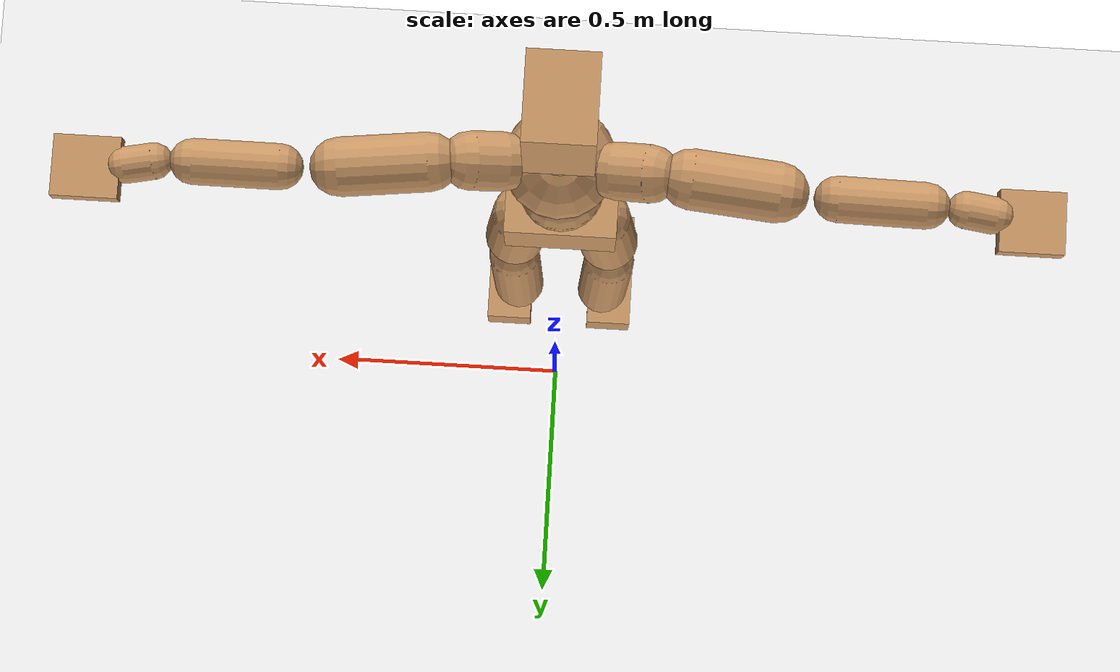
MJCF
<mujoco model="humanoid">
  <option integrator="implicitfast" />

  <visual>
    <global offwidth="1280" offheight="960" />
    <headlight active="1" ambient="0.34 0.34 0.34" diffuse="0.5 0.5 0.5" />
  </visual>

  <default>
    <joint damping="2" stiffness="2" armature="0.01" limited="true" solimplimit="0 .99 .01" />
    <geom condim="1" friction="0.7 0.005 0.0001" solimp=".99 .99 .003" solref="0.015 1" margin="0.001" rgba="0.8 0.6 .4 1" />
    <default class="smplcontact">
      <geom condim="3" friction="1. 0.005 0.0001" solref="0.015 1" solimp="0.98 0.98 0.001" priority="1" />
    </default>
    <default class="stiff_medium">
      <joint stiffness="10" />
    </default>
    <default class="stiff_medium_higher">
      <joint stiffness="50" />
    </default>
    <default class="stiff_high">
      <joint stiffness="100" />
    </default>
  </default>

  <asset>
    <texture type="skybox" builtin="gradient" rgb1="0.99 0.99 0.99" rgb2="0.608 0.828 0.892" width="100" />
    <texture builtin="flat" height="1278" mark="cross" markrgb="1 1 1" name="texgeom" random="0.01" rgb1="0.8 0.6 0.4" rgb2="0.8 0.6 0.4" type="cube" width="127" />
    <texture name="texplane" type="2d" builtin="checker" markrgb="1 1 1" rgb1="0.756 0.772 0.76" rgb2="0.6 0.6 0.6" width="100" height="100" />
    <material name="MatPlane" reflectance="0.5" texture="texplane" texrepeat="1 1" texuniform="true" />
    <material name="geom" texture="texgeom" texuniform="true" />
  </asset>

  <worldbody>
    <light name="tracking_light" pos="0 0 7" dir="0 0 -1" directional="true" cutoff="100" exponent="1" diffuse="1 1 1" specular="0.1 0.1 0.1" mode="trackcom" />
    <camera name="back" pos="0 3 2.4" xyaxes="-1 0 0 0 -1 2" mode="trackcom" />
    <camera name="side" pos="-3 0 2.4" xyaxes="0 -1 0 1 0 2" mode="trackcom" />
    <camera name="front_side" pos="-2.8 -2.8 0.8" xyaxes="0.5 -0.5 0 0.1 0.1 1" mode="trackcom" />
    <geom condim="3" name="floor" pos="0 0 0" rgba="1 1 1 1" size="100 100 .2" type="plane" material="MatPlane" />
    <body name="Pelvis" pos="-0.0018 -0.2233 0.9367" euler="90 0 0">
      <site name="Pelvis" size="0.01" />
      <freejoint name="Pelvis" />
      <geom type="box" pos="-0.0000 -0.0121 -0.0055" size="0.1069 0.0722 0.083" quat="1.0000 0.0000 0.0000 0.0000" density="3165.830099" name="Pelvis" />
      <body name="L_Hip" pos="0.0695 -0.0914 -0.0068">
        <joint name="L_Hip_x" type="hinge" pos="0 0 0" axis="1 0 0" stiffness="10.0" range="-160.0 22.92" class="stiff_medium" damping="14.999999999999998" armature="0.009999999999999998"/>
        <joint name="L_Hip_y" type="hinge" pos="0 0 0" axis="0 1 0" stiffness="10.0" range="-70.0 70.0" class="stiff_medium" damping="10.000000000000002" armature="0.010000000000000005"/>
        <joint name="L_Hip_z" type="hinge" pos="0 0 0" axis="0 0 1" stiffness="10.0" range="-28.65 90.0" class="stiff_medium" damping="9.999999999999998" armature="0.009999999999999997"/>
        <geom type="capsule" density="2040.816327" fromto="0.0069 -0.075 -0.0009 0.0274 -0.3002 -0.0036" size="0.0615" name="L_Hip" />
        <body name="L_Knee" pos="0.0343 -0.3752 -0.0045">
          <joint name="L_Knee_x" type="hinge" pos="0 0 0" axis="1 0 0" range="-5.16 171.89" damping="8.000000000000002" armature="0.010000000000000005" stiffness="2.0"/>
          <joint name="L_Knee_y" type="hinge" pos="0 0 0" axis="0 1 0" range="-4.58 6.88" damping="8.0" armature="0.010000000000000002" stiffness="2.0"/>
          <joint name="L_Knee_z" type="hinge" pos="0 0 0" axis="0 0 1" range="-6.88 4.58" damping="8.0" armature="0.01" stiffness="2.0"/>
          <geom type="capsule" density="1234.567901" fromto="-0.0027 -0.0796 -0.0087 -0.0109 -0.3184 -0.035" size="0.0541" name="L_Knee" />
          <body name="L_Ankle" pos="-0.0136 -0.398 -0.0437">
            <joint name="L_Ankle_x" type="hinge" pos="0 0 0" axis="1 0 0" range="-45.84 45.84" class="stiff_medium" damping="5.999999999999993" armature="0.009999999999999978" stiffness="10.0"/>
            <joint name="L_Ankle_y" type="hinge" pos="0 0 0" axis="0 1 0" range="-74.48 22.92" class="stiff_medium" damping="3.0" armature="0.010000000000000002" stiffness="10.0"/>
            <joint name="L_Ankle_z" type="hinge" pos="0 0 0" axis="0 0 1" range="-4.58 4.58" class="stiff_medium" damping="5.9999999999999485" armature="0.009999999999999827" stiffness="10.0"/>
            <geom type="box" pos="0.0233 -0.0239 0.0242" size="0.0483 0.0464 0.085" quat="1.0000 0.0000 0.0000 0.0000" density="449.071558" name="L_Ankle" class="smplcontact" />
            <body name="L_Toe" pos="0.0264 -0.0558 0.1193">
              <joint name="L_Toe_x" type="hinge" pos="0 0 0" axis="1 0 0" range="-91.67 22.92" armature="0.009999999999998207" damping="1.9999999999998206" stiffness="2.0"/>
              <joint name="L_Toe_y" type="hinge" pos="0 0 0" axis="0 1 0" range="-4.58 4.58" armature="0.009999999999999976" damping="1.9999999999999976" stiffness="2.0"/>
              <joint name="L_Toe_z" type="hinge" pos="0 0 0" axis="0 0 1" range="-4.58 4.58" armature="0.009999999999997608" damping="1.9999999999997606" stiffness="2.0"/>
              <geom type="box" pos="-0.003 0.0055 0.0248" size="0.0478 0.02 0.0496" quat="1.0000 0.0000 0.0000 0.0000" density="423.206892" name="L_Toe" class="smplcontact" />
            </body>
          </body>
        </body>
      </body>
      <body name="R_Hip" pos="-0.0677 -0.0905 -0.0043">
        <joint name="R_Hip_x" type="hinge" pos="0 0 0" axis="1 0 0" stiffness="10.0" range="-160.0 22.92" class="stiff_medium" damping="14.999999999999998" armature="0.009999999999999998"/>
        <joint name="R_Hip_y" type="hinge" pos="0 0 0" axis="0 1 0" stiffness="10.0" range="-70.0 70.0" class="stiff_medium" damping="10.000000000000002" armature="0.010000000000000005"/>
        <joint name="R_Hip_z" type="hinge" pos="0 0 0" axis="0 0 1" stiffness="10.0" range="-90.0 28.65" class="stiff_medium" damping="9.999999999999998" armature="0.009999999999999997"/>
        <geom type="capsule" density="2040.816327" fromto="-0.0077 -0.0765 -0.0018 -0.0306 -0.3061 -0.0071" size="0.0606" name="R_Hip" />
        <body name="R_Knee" pos="-0.0383 -0.3826 -0.0089">
          <joint name="R_Knee_x" type="hinge" pos="0 0 0" axis="1 0 0" range="-5.16 171.89" damping="8.000000000000002" armature="0.010000000000000005" stiffness="2.0"/>
          <joint name="R_Knee_y" type="hinge" pos="0 0 0" axis="0 1 0" range="-6.88 4.58" damping="8.0" armature="0.010000000000000002" stiffness="2.0"/>
          <joint name="R_Knee_z" type="hinge" pos="0 0 0" axis="0 0 1" range="-4.58 6.88" damping="8.0" armature="0.01" stiffness="2.0"/>
          <geom type="capsule" density="1234.567901" fromto="0.0032 -0.0797 -0.0085 0.0126 -0.3187 -0.0338" size="0.0541" name="R_Knee" />
          <body name="R_Ankle" pos="0.0158 -0.3984 -0.0423">
            <joint name="R_Ankle_x" type="hinge" pos="0 0 0" axis="1 0 0" range="-45.84 45.84" class="stiff_medium" damping="5.999999999999993" armature="0.009999999999999978" stiffness="10.0"/>
            <joint name="R_Ankle_y" type="hinge" pos="0 0 0" axis="0 1 0" range="-22.92 74.48" class="stiff_medium" damping="3.0" armature="0.010000000000000002" stiffness="10.0"/>
            <joint name="R_Ankle_z" type="hinge" pos="0 0 0" axis="0 0 1" range="-4.58 4.58" class="stiff_medium" damping="5.9999999999999485" armature="0.009999999999999827" stiffness="10.0"/>
            <geom type="box" pos="-0.0212 -0.0174 0.0256" size="0.0483 0.0478 0.0865" quat="1.0000 0.0000 0.0000 0.0000" density="434.700981" name="R_Ankle" class="smplcontact" />
            <body name="R_Toe" pos="-0.0254 -0.0481 0.1233">
              <joint name="R_Toe_x" type="hinge" pos="0 0 0" axis="1 0 0" range="-91.67 22.92" armature="0.009999999999998207" damping="1.9999999999998206" stiffness="2.0"/>
              <joint name="R_Toe_y" type="hinge" pos="0 0 0" axis="0 1 0" range="-4.58 4.58" armature="0.009999999999999976" damping="1.9999999999999976" stiffness="2.0"/>
              <joint name="R_Toe_z" type="hinge" pos="0 0 0" axis="0 0 1" range="-4.58 4.58" armature="0.009999999999997608" damping="1.9999999999997606" stiffness="2.0"/>
              <geom type="box" pos="0.0042 0.0045 0.0227" size="0.0479 0.0216 0.0493" quat="1.0000 0.0000 0.0000 0.0000" density="407.384095" name="R_Toe" class="smplcontact" />
            </body>
          </body>
        </body>
      </body>
      <body name="Torso" pos="-0.002625 0.11445 -0.028035">
        <joint name="Torso_x" type="hinge" pos="0 0 0" axis="1 0 0" range="-25.78 57.3" class="stiff_medium" damping="15.885938601224538" armature="0.010764241477955468" stiffness="10.419810227272727"/>
        <joint name="Torso_y" type="hinge" pos="0 0 0" axis="0 1 0" range="-57.3 57.3" class="stiff_high" damping="20.4325796433228" armature="0.009997983636253009" stiffness="104.39362727272726"/>
        <joint name="Torso_z" type="hinge" pos="0 0 0" axis="0 0 1" range="-34.38 34.38" class="stiff_high" damping="21.03040158854331" armature="0.010519861380583242" stiffness="105.10542272727272"/>
        <geom type="capsule" density="2040.816327" fromto="0.002625 0.06384 0.000525 0.00315 0.078015 0.00063" size="0.0769" name="Torso" />
        <body name="Spine" pos="0.005775 0.14196 0.001155">
          <joint name="Spine_x" type="hinge" pos="0 0 0" axis="1 0 0" stiffness="10.374046363636362" range="-25.78 57.3" class="stiff_medium" damping="15.715307024794036" armature="0.010580715511965223"/>
          <joint name="Spine_y" type="hinge" pos="0 0 0" axis="0 1 0" stiffness="10.391872954545459" range="-57.3 57.3" class="stiff_high" damping="8.15401322310553" armature="0.009996984532618838"/>
          <joint name="Spine_z" type="hinge" pos="0 0 0" axis="0 0 1" stiffness="20.68049227272727" range="-34.38 34.38" class="stiff_high" damping="12.370730729671028" armature="0.01027773318179479"/>
          <geom type="capsule" density="2040.816327" fromto="0.000735 0.02499 0.01197 0.00084 0.030555 0.0147" size="0.0755" name="Spine" />
          <body name="Chest" pos="0.001575 0.055545 0.02667">
            <joint name="Chest_x" type="hinge" pos="0 0 0" axis="1 0 0" stiffness="10.275206590909091" range="-25.78 57.3" class="stiff_medium" damping="15.560968466750916" armature="0.0104737008332033"/>
            <joint name="Chest_y" type="hinge" pos="0 0 0" axis="0 1 0" stiffness="10.156445000000001" range="-57.3 57.3" class="stiff_high" damping="8.064180692467838" armature="0.010004578718361077"/>
            <joint name="Chest_z" type="hinge" pos="0 0 0" axis="0 0 1" stiffness="20.58668590909091" range="-34.38 34.38" class="stiff_high" damping="12.283761840718956" armature="0.010179907701958464"/>
            <geom type="capsule" density="2040.816327" fromto="-0.000945 0.07161 -0.018165 -0.00105 0.087465 -0.02226" size="0.1002" name="Chest" />
            <body name="Neck" pos="-0.00294 0.224595 -0.045045">
              <joint name="Neck_x" type="hinge" pos="0 0 0" axis="1 0 0" range="-28.65 57.3" class="stiff_medium_higher" damping="10.035816971790549" armature="0.010014160550049483" stiffness="50.287601136363634"/>
              <joint name="Neck_y" type="hinge" pos="0 0 0" axis="0 1 0" range="-40.11 40.11" class="stiff_medium_higher" damping="10.04193677304627" armature="0.010038952160699995" stiffness="50.22461136363636"/>
              <joint name="Neck_z" type="hinge" pos="0 0 0" axis="0 0 1" range="-40.11 40.11" class="stiff_medium_higher" damping="10.016052769153523" armature="0.010009914075657827" stiffness="50.110976136363625"/>
              <geom type="capsule" density="1000" fromto="0.00105 0.01365 0.010815 0.004305 0.0546 0.043155" size="0.0436" name="Neck" />
              <body name="Head" pos="0.0052 0.065 0.0513">
                <joint name="Head_x" type="hinge" pos="0 0 0" axis="1 0 0" range="-28.65 57.3" class="stiff_medium_higher" damping="2.0000000000000093" armature="0.010000000000000096" stiffness="50.0"/>
                <joint name="Head_y" type="hinge" pos="0 0 0" axis="0 1 0" range="-40.11 40.11" class="stiff_medium_higher" damping="2.0" armature="0.01" stiffness="50.0"/>
                <joint name="Head_z" type="hinge" pos="0 0 0" axis="0 0 1" range="-40.11 40.11" class="stiff_medium_higher" damping="2.0000000000000067" armature="0.01000000000000007" stiffness="50.0"/>
                <geom type="box" pos="-0.0042 0.0876 -0.0116" size="0.0606 0.1154 0.076" quat="1.0000 0.0000 0.0000 0.0000" density="1018.069894" name="Head" />
                <geom type="capsule" name="nose" size="0.02 0.01" pos="0 0.07 0.05" quat="1 0 0 0" mass="0" contype="0" conaffinity="0" />
              </body>
            </body>
            <body name="L_Thorax" pos="0.0788 0.1217 -0.0341">
              <joint name="L_Thorax_x" type="hinge" pos="0 0 0" axis="1 0 0" range="-10.89 4.58" class="stiff_medium_higher" damping="19.9999999999999" armature="0.009999999999999903" stiffness="50.0"/>
              <joint name="L_Thorax_y" type="hinge" pos="0 0 0" axis="0 1 0" range="-28.65 17.19" class="stiff_medium_higher" damping="20.000000000000004" armature="0.010000000000000005" stiffness="50.0"/>
              <joint name="L_Thorax_z" type="hinge" pos="0 0 0" axis="0 0 1" range="-31.51 40.11" class="stiff_medium_higher" damping="19.999999999999996" armature="0.009999999999999995" stiffness="50.0"/>
              <geom type="capsule" density="1000" fromto="0.0182 0.0061 -0.0018 0.0728 0.0244 -0.0071" size="0.0521" name="L_Thorax" />
              <body name="L_Shoulder" pos="0.091 0.0305 -0.0089">
                <joint name="L_Shoulder_x" type="hinge" pos="0 0 0" axis="1 0 0" range="-97.4 97.4" class="stiff_medium" damping="5.999999999999977" armature="0.009999999999999926" stiffness="10.0"/>
                <joint name="L_Shoulder_y" type="hinge" pos="0 0 0" axis="0 1 0" range="-108.86 80.21" class="stiff_medium" damping="6.000000000000002" armature="0.010000000000000005" stiffness="10.0"/>
                <joint name="L_Shoulder_z" type="hinge" pos="0 0 0" axis="0 0 1" range="-97.4 85.94" class="stiff_medium" damping="6.0" armature="0.01" stiffness="10.0"/>
                <geom type="capsule" density="1000" fromto="0.0519 -0.0026 -0.0055 0.2077 -0.0102 -0.022" size="0.0517" name="L_Shoulder" />
                <body name="L_Elbow" pos="0.2596 -0.0128 -0.0275">
                  <joint name="L_Elbow_x" type="hinge" pos="0 0 0" axis="1 0 0" range="-17.19 4.58" damping="4.999999999999873" armature="0.009999999999999492" stiffness="2.0"/>
                  <joint name="L_Elbow_y" type="hinge" pos="0 0 0" axis="0 1 0" range="-180.0 17.19" damping="5.000000000000005" armature="0.010000000000000023" stiffness="2.0"/>
                  <joint name="L_Elbow_z" type="hinge" pos="0 0 0" axis="0 0 1" range="-100.84 4.58" damping="4.999999999999999" armature="0.009999999999999998" stiffness="2.0"/>
                  <geom type="capsule" density="1000" fromto="0.0498 0.0018 -0.0002 0.1994 0.0072 -0.0009" size="0.0405" name="L_Elbow" />
                  <body name="L_Wrist" pos="0.2492 0.009 -0.0012">
                    <joint name="L_Wrist_x" type="hinge" pos="0 0 0" axis="1 0 0" range="-180.0 22.92" armature="0.009999999999999598" damping="1.9999999999999596" stiffness="2.0"/>
                    <joint name="L_Wrist_y" type="hinge" pos="0 0 0" axis="0 1 0" range="-17.19 17.19" armature="0.010000000000000066" damping="2.0000000000000067" stiffness="2.0"/>
                    <joint name="L_Wrist_z" type="hinge" pos="0 0 0" axis="0 0 1" range="-22.92 22.92" armature="0.010000000000000077" damping="2.0000000000000075" stiffness="2.0"/>
                    <geom type="capsule" density="1000" fromto="0.0168 -0.0016 -0.003 0.0672 -0.0065 -0.012" size="0.0318" name="L_Wrist" class="smplcontact" />
                    <body name="L_Hand" pos="0.084 -0.0082 -0.0149">
                      <joint name="L_Hand_x" type="hinge" pos="0 0 0" axis="1 0 0" range="-17.19 17.19" armature="0.009999999999999773" damping="1.9999999999999774" stiffness="2.0"/>
                      <joint name="L_Hand_y" type="hinge" pos="0 0 0" axis="0 1 0" range="-51.57 51.57" armature="0.010000000000000201" damping="2.00000000000002" stiffness="2.0"/>
                      <joint name="L_Hand_z" type="hinge" pos="0 0 0" axis="0 0 1" range="-91.67 91.67" armature="0.010000000000000247" damping="2.0000000000000244" stiffness="2.0"/>
                      <geom type="box" pos="0.0493 0.001 -0.0058" size="0.0585 0.0158 0.0538" quat="1.0000 0.0000 0.0000 0.0000" density="400.552564" name="L_Hand" class="smplcontact" />
                    </body>
                  </body>
                </body>
              </body>
            </body>
            <body name="R_Thorax" pos="-0.0818 0.1188 -0.0386">
              <joint name="R_Thorax_x" type="hinge" pos="0 0 0" axis="1 0 0" range="-10.89 4.58" class="stiff_medium_higher" damping="19.9999999999999" armature="0.009999999999999903" stiffness="50.0"/>
              <joint name="R_Thorax_y" type="hinge" pos="0 0 0" axis="0 1 0" range="-17.19 28.65" class="stiff_medium_higher" damping="20.000000000000004" armature="0.010000000000000005" stiffness="50.0"/>
              <joint name="R_Thorax_z" type="hinge" pos="0 0 0" axis="0 0 1" range="-40.11 31.51" class="stiff_medium_higher" damping="19.999999999999996" armature="0.009999999999999995" stiffness="50.0"/>
              <geom type="capsule" density="1000" fromto="-0.0192 0.0065 -0.0018 -0.0768 0.026 -0.0073" size="0.0511" name="R_Thorax" />
              <body name="R_Shoulder" pos="-0.096 0.0326 -0.0091">
                <joint name="R_Shoulder_x" type="hinge" pos="0 0 0" axis="1 0 0" range="-97.4 97.4" class="stiff_medium" damping="5.999999999999977" armature="0.009999999999999926" stiffness="10.0"/>
                <joint name="R_Shoulder_y" type="hinge" pos="0 0 0" axis="0 1 0" range="-80.21 108.86" class="stiff_medium" damping="6.000000000000002" armature="0.010000000000000005" stiffness="10.0"/>
                <joint name="R_Shoulder_z" type="hinge" pos="0 0 0" axis="0 0 1" range="-85.94 97.4" class="stiff_medium" damping="6.0" armature="0.01" stiffness="10.0"/>
                <geom type="capsule" density="1000" fromto="-0.0507 -0.0027 -0.0043 -0.203 -0.0107 -0.0171" size="0.0531" name="R_Shoulder" />
                <body name="R_Elbow" pos="-0.2537 -0.0133 -0.0214">
                  <joint name="R_Elbow_x" type="hinge" pos="0 0 0" axis="1 0 0" range="-17.19 4.58" damping="4.999999999999873" armature="0.009999999999999492" stiffness="2.0"/>
                  <joint name="R_Elbow_y" type="hinge" pos="0 0 0" axis="0 1 0" range="-17.19 180.0" damping="5.000000000000005" armature="0.010000000000000023" stiffness="2.0"/>
                  <joint name="R_Elbow_z" type="hinge" pos="0 0 0" axis="0 0 1" range="-4.58 100.84" damping="4.999999999999999" armature="0.009999999999999998" stiffness="2.0"/>
                  <geom type="capsule" density="1000" fromto="-0.0511 0.0016 -0.0011 -0.2042 0.0062 -0.0044" size="0.0408" name="R_Elbow" />
                  <body name="R_Wrist" pos="-0.2553 0.0078 -0.0056">
                    <joint name="R_Wrist_x" type="hinge" pos="0 0 0" axis="1 0 0" range="-180.0 22.92" armature="0.009999999999999598" damping="1.9999999999999596" stiffness="2.0"/>
                    <joint name="R_Wrist_y" type="hinge" pos="0 0 0" axis="0 1 0" range="-17.19 17.19" armature="0.010000000000000066" damping="2.0000000000000067" stiffness="2.0"/>
                    <joint name="R_Wrist_z" type="hinge" pos="0 0 0" axis="0 0 1" range="-22.92 22.92" armature="0.010000000000000077" damping="2.0000000000000075" stiffness="2.0"/>
                    <geom type="capsule" density="1000" fromto="-0.0169 -0.0012 -0.0021 -0.0677 -0.0049 -0.0083" size="0.0326" name="R_Wrist" class="smplcontact" />
                    <body name="R_Hand" pos="-0.0846 -0.0061 -0.0103">
                      <joint name="R_Hand_x" type="hinge" pos="0 0 0" axis="1 0 0" range="-17.19 17.19" armature="0.009999999999999773" damping="1.9999999999999774" stiffness="2.0"/>
                      <joint name="R_Hand_y" type="hinge" pos="0 0 0" axis="0 1 0" range="-51.57 51.57" armature="0.010000000000000201" damping="2.00000000000002" stiffness="2.0"/>
                      <joint name="R_Hand_z" type="hinge" pos="0 0 0" axis="0 0 1" range="-91.67 91.67" armature="0.010000000000000247" damping="2.0000000000000244" stiffness="2.0"/>
                      <geom type="box" pos="-0.0462 -0.0009 -0.0079" size="0.0569 0.0164 0.0546" quat="1.0000 0.0000 0.0000 0.0000" density="403.679611" name="R_Hand" class="smplcontact" />
                    </body>
                  </body>
                </body>
              </body>
            </body>
          </body>
        </body>
      </body>
    </body>
  </worldbody>
  <actuator>
    <general name="L_Hip_x" joint="L_Hip_x" biastype="affine" gainprm="287.33006409732246" biasprm="-215.3247604770444 -180.0 -1.9999999999999998" ctrllimited="true" ctrlrange="-1 1" forcerange="-360.0 360.0" />
    <general name="L_Hip_y" joint="L_Hip_y" biastype="affine" gainprm="219.9114857512855" biasprm="0.0 -180.0 -2.0000000000000004" ctrllimited="true" ctrlrange="-1 1" forcerange="-360.0 360.0" />
    <general name="L_Hip_z" joint="L_Hip_z" biastype="affine" gainprm="186.3749841742145" biasprm="96.3683546488669 -180.0 -1.9999999999999996" ctrllimited="true" ctrlrange="-1 1" forcerange="-360.0 360.0" />
    <general name="L_Knee_x" joint="L_Knee_x" biastype="affine" gainprm="278.10948965903646" biasprm="261.8988715665131 -180.0 -2.0000000000000004" ctrllimited="true" ctrlrange="-1 1" forcerange="-360.0 360.0" />
    <general name="L_Knee_y" joint="L_Knee_y" biastype="affine" gainprm="18.001325905069514" biasprm="3.612831551628262 -180.0 -2.0" ctrllimited="true" ctrlrange="-1 1" forcerange="-360.0 360.0" />
    <general name="L_Knee_z" joint="L_Knee_z" biastype="affine" gainprm="18.001325905069514" biasprm="-3.612831551628262 -180.0 -2.0" ctrllimited="true" ctrlrange="-1 1" forcerange="-360.0 360.0" />
    <general name="L_Ankle_x" joint="L_Ankle_x" biastype="affine" gainprm="72.00530362027807" biasprm="0.0 -90.0 -1.9999999999999976" ctrllimited="true" ctrlrange="-1 1" forcerange="-180.0 180.0" />
    <general name="L_Ankle_y" joint="L_Ankle_y" biastype="affine" gainprm="76.49778111491148" biasprm="-40.49512930477244 -90.0 -2.0" ctrllimited="true" ctrlrange="-1 1" forcerange="-180.0 180.0" />
    <general name="L_Ankle_z" joint="L_Ankle_z" biastype="affine" gainprm="7.1942471767206255" biasprm="0.0 -90.0 -1.9999999999999827" ctrllimited="true" ctrlrange="-1 1" forcerange="-180.0 180.0" />
    <general name="L_Toe_x" joint="L_Toe_x" biastype="affine" gainprm="71.99902043497087" biasprm="-43.19689898685965 -72.0 -0.7999999999999283" ctrllimited="true" ctrlrange="-1 1" forcerange="-144.0 144.0" />
    <general name="L_Toe_y" joint="L_Toe_y" biastype="affine" gainprm="5.755397741376501" biasprm="0.0 -72.0 -0.799999999999999" ctrllimited="true" ctrlrange="-1 1" forcerange="-144.0 144.0" />
    <general name="L_Toe_z" joint="L_Toe_z" biastype="affine" gainprm="5.755397741376501" biasprm="0.0 -72.0 -0.7999999999999043" ctrllimited="true" ctrlrange="-1 1" forcerange="-144.0 144.0" />
    <general name="R_Hip_x" joint="R_Hip_x" biastype="affine" gainprm="287.33006409732246" biasprm="-215.3247604770444 -180.0 -1.9999999999999998" ctrllimited="true" ctrlrange="-1 1" forcerange="-360.0 360.0" />
    <general name="R_Hip_y" joint="R_Hip_y" biastype="affine" gainprm="219.9114857512855" biasprm="0.0 -180.0 -2.0000000000000004" ctrllimited="true" ctrlrange="-1 1" forcerange="-360.0 360.0" />
    <general name="R_Hip_z" joint="R_Hip_z" biastype="affine" gainprm="186.3749841742145" biasprm="-96.3683546488669 -180.0 -1.9999999999999996" ctrllimited="true" ctrlrange="-1 1" forcerange="-360.0 360.0" />
    <general name="R_Knee_x" joint="R_Knee_x" biastype="affine" gainprm="278.10948965903646" biasprm="261.8988715665131 -180.0 -2.0000000000000004" ctrllimited="true" ctrlrange="-1 1" forcerange="-360.0 360.0" />
    <general name="R_Knee_y" joint="R_Knee_y" biastype="affine" gainprm="18.001325905069514" biasprm="-3.612831551628262 -180.0 -2.0" ctrllimited="true" ctrlrange="-1 1" forcerange="-360.0 360.0" />
    <general name="R_Knee_z" joint="R_Knee_z" biastype="affine" gainprm="18.001325905069514" biasprm="3.612831551628262 -180.0 -2.0" ctrllimited="true" ctrlrange="-1 1" forcerange="-360.0 360.0" />
    <general name="R_Ankle_x" joint="R_Ankle_x" biastype="affine" gainprm="72.00530362027807" biasprm="0.0 -90.0 -1.9999999999999976" ctrllimited="true" ctrlrange="-1 1" forcerange="-180.0 180.0" />
    <general name="R_Ankle_y" joint="R_Ankle_y" biastype="affine" gainprm="76.49778111491148" biasprm="40.49512930477244 -90.0 -2.0" ctrllimited="true" ctrlrange="-1 1" forcerange="-180.0 180.0" />
    <general name="R_Ankle_z" joint="R_Ankle_z" biastype="affine" gainprm="7.1942471767206255" biasprm="0.0 -90.0 -1.9999999999999827" ctrllimited="true" ctrlrange="-1 1" forcerange="-180.0 180.0" />
    <general name="R_Toe_x" joint="R_Toe_x" biastype="affine" gainprm="71.99902043497087" biasprm="-43.19689898685965 -72.0 -0.7999999999999283" ctrllimited="true" ctrlrange="-1 1" forcerange="-144.0 144.0" />
    <general name="R_Toe_y" joint="R_Toe_y" biastype="affine" gainprm="5.755397741376501" biasprm="0.0 -72.0 -0.799999999999999" ctrllimited="true" ctrlrange="-1 1" forcerange="-144.0 144.0" />
    <general name="R_Toe_z" joint="R_Toe_z" biastype="affine" gainprm="5.755397741376501" biasprm="0.0 -72.0 -0.7999999999999043" ctrllimited="true" ctrlrange="-1 1" forcerange="-144.0 144.0" />
    <general name="Torso_x" joint="Torso_x" biastype="affine" gainprm="181.30714151135513" biasprm="68.78672484879529 -250.07544545454547 -4.236250293659877" ctrllimited="true" ctrlrange="-1 1" forcerange="-375.1131681818182 375.1131681818182" />
    <general name="Torso_y" joint="Torso_y" biastype="affine" gainprm="250.56316092649553" biasprm="0.0 -250.5447054545454 -4.08651592866456" ctrllimited="true" ctrlrange="-1 1" forcerange="-375.8170581818181 375.8170581818181" />
    <general name="Torso_z" joint="Torso_z" biastype="affine" gainprm="151.36295751229895" biasprm="0.0 -252.25301454545453 -4.206080317708662" ctrllimited="true" ctrlrange="-1 1" forcerange="-378.3795218181818 378.3795218181818" />
    <general name="Spine_x" joint="Spine_x" biastype="affine" gainprm="180.51083955196748" biasprm="68.48461317619179 -248.9771127272727 -4.190748539945076" ctrllimited="true" ctrlrange="-1 1" forcerange="-373.46566909090905 373.46566909090905" />
    <general name="Spine_y" joint="Spine_y" biastype="affine" gainprm="249.4233224251339" biasprm="0.0 -249.40495090909099 -4.077006611552765" ctrllimited="true" ctrlrange="-1 1" forcerange="-374.1074263636365 374.1074263636365" />
    <general name="Spine_z" joint="Spine_z" biastype="affine" gainprm="148.91051251145416" biasprm="0.0 -248.16590727272725 -4.1235769098903425" ctrllimited="true" ctrlrange="-1 1" forcerange="-372.24886090909087 372.24886090909087" />
    <general name="Chest_x" joint="Chest_x" biastype="affine" gainprm="178.79100432753037" biasprm="67.83211911896673 -246.6049581818182 -4.149591591133578" ctrllimited="true" ctrlrange="-1 1" forcerange="-369.9074372727273 369.9074372727273" />
    <general name="Chest_y" joint="Chest_y" biastype="affine" gainprm="243.77263530921834" biasprm="0.0 -243.75468 -4.032090346233919" ctrllimited="true" ctrlrange="-1 1" forcerange="-365.63202 365.63202" />
    <general name="Chest_z" joint="Chest_z" biastype="affine" gainprm="148.23505694193912" biasprm="0.0 -247.04023090909092 -4.094587280239652" ctrllimited="true" ctrlrange="-1 1" forcerange="-370.56034636363637 370.56034636363637" />
    <general name="Neck_x" joint="Neck_x" biastype="affine" gainprm="27.157304911194775" biasprm="9.052434970398258 -36.207072818181814 -0.8028653577432441" ctrllimited="true" ctrlrange="-1 1" forcerange="-72.41414563636363 72.41414563636363" />
    <general name="Neck_y" joint="Neck_y" biastype="affine" gainprm="25.315068733143725" biasprm="0.0 -36.16172018181818 -0.8033549418437016" ctrllimited="true" ctrlrange="-1 1" forcerange="-72.32344036363637 72.32344036363637" />
    <general name="Neck_z" joint="Neck_z" biastype="affine" gainprm="25.2577923598516" biasprm="0.0 -36.079902818181814 -0.8012842215322818" ctrllimited="true" ctrlrange="-1 1" forcerange="-72.15980563636363 72.15980563636363" />
    <general name="Head_x" joint="Head_x" biastype="affine" gainprm="18.001325905069514" biasprm="6.000441968356505 -24.0 -0.8000000000000038" ctrllimited="true" ctrlrange="-1 1" forcerange="-48.0 48.0" />
    <general name="Head_y" joint="Head_y" biastype="affine" gainprm="16.801237511398213" biasprm="0.0 -24.0 -0.8" ctrllimited="true" ctrlrange="-1 1" forcerange="-48.0 48.0" />
    <general name="Head_z" joint="Head_z" biastype="affine" gainprm="16.801237511398213" biasprm="0.0 -24.0 -0.8000000000000027" ctrllimited="true" ctrlrange="-1 1" forcerange="-48.0 48.0" />
    <general name="L_Thorax_x" joint="L_Thorax_x" biastype="affine" gainprm="16.200146117011364" biasprm="-6.6078165480505335 -120.0 -1.5999999999999923" ctrllimited="true" ctrlrange="-1 1" forcerange="-240.0 240.0" />
    <general name="L_Thorax_y" joint="L_Thorax_y" biastype="affine" gainprm="48.00353574685204" biasprm="-12.00088393671301 -120.0 -1.6000000000000005" ctrllimited="true" ctrlrange="-1 1" forcerange="-240.0 240.0" />
    <general name="L_Thorax_z" joint="L_Thorax_z" biastype="affine" gainprm="75.00028861670033" biasprm="9.00589894029074 -120.0 -1.5999999999999996" ctrllimited="true" ctrlrange="-1 1" forcerange="-240.0 240.0" />
    <general name="L_Shoulder_x" joint="L_Shoulder_x" biastype="affine" gainprm="81.5976331892389" biasprm="0.0 -48.0 -1.599999999999994" ctrllimited="true" ctrlrange="-1 1" forcerange="-96.0 96.0" />
    <general name="L_Shoulder_y" joint="L_Shoulder_y" biastype="affine" gainprm="79.19745640189629" biasprm="-12.00088393671301 -48.0 -1.6000000000000005" ctrllimited="true" ctrlrange="-1 1" forcerange="-96.0 96.0" />
    <general name="L_Shoulder_z" joint="L_Shoulder_z" biastype="affine" gainprm="76.79727961455369" biasprm="-4.800353574685214 -48.0 -1.6" ctrllimited="true" ctrlrange="-1 1" forcerange="-96.0 96.0" />
    <general name="L_Elbow_x" joint="L_Elbow_x" biastype="affine" gainprm="13.67849441372996" biasprm="-7.923096672353461 -72.0 -0.7999999999999797" ctrllimited="true" ctrlrange="-1 1" forcerange="-144.0 144.0" />
    <general name="L_Elbow_y" joint="L_Elbow_y" biastype="affine" gainprm="123.89813107227425" biasprm="-102.29653998619085 -72.0 -0.8000000000000009" ctrllimited="true" ctrlrange="-1 1" forcerange="-144.0 144.0" />
    <general name="L_Elbow_z" joint="L_Elbow_z" biastype="affine" gainprm="66.23733950828719" biasprm="-60.4819417669107 -72.0 -0.7999999999999999" ctrllimited="true" ctrlrange="-1 1" forcerange="-144.0 144.0" />
    <general name="L_Wrist_x" joint="L_Wrist_x" biastype="affine" gainprm="21.24973270888136" biasprm="-16.449379134196157 -12.0 -0.7999999999999838" ctrllimited="true" ctrlrange="-1 1" forcerange="-24.0 24.0" />
    <general name="L_Wrist_y" joint="L_Wrist_y" biastype="affine" gainprm="3.6002651810139037" biasprm="0.0 -12.0 -0.8000000000000027" ctrllimited="true" ctrlrange="-1 1" forcerange="-24.0 24.0" />
    <general name="L_Wrist_z" joint="L_Wrist_z" biastype="affine" gainprm="4.800353574685205" biasprm="0.0 -12.0 -0.800000000000003" ctrllimited="true" ctrlrange="-1 1" forcerange="-24.0 24.0" />
    <general name="L_Hand_x" joint="L_Hand_x" biastype="affine" gainprm="3.6002651810139037" biasprm="0.0 -12.0 -0.7999999999999909" ctrllimited="true" ctrlrange="-1 1" forcerange="-24.0 24.0" />
    <general name="L_Hand_y" joint="L_Hand_y" biastype="affine" gainprm="10.800795543041708" biasprm="0.0 -12.0 -0.800000000000008" ctrllimited="true" ctrlrange="-1 1" forcerange="-24.0 24.0" />
    <general name="L_Hand_z" joint="L_Hand_z" biastype="affine" gainprm="19.199319903638422" biasprm="0.0 -12.0 -0.8000000000000098" ctrllimited="true" ctrlrange="-1 1" forcerange="-24.0 24.0" />
    <general name="R_Thorax_x" joint="R_Thorax_x" biastype="affine" gainprm="16.200146117011364" biasprm="-6.6078165480505335 -120.0 -1.5999999999999923" ctrllimited="true" ctrlrange="-1 1" forcerange="-240.0 240.0" />
    <general name="R_Thorax_y" joint="R_Thorax_y" biastype="affine" gainprm="48.00353574685204" biasprm="12.000883936713002 -120.0 -1.6000000000000005" ctrllimited="true" ctrlrange="-1 1" forcerange="-240.0 240.0" />
    <general name="R_Thorax_z" joint="R_Thorax_z" biastype="affine" gainprm="75.00028861670033" biasprm="-9.00589894029074 -120.0 -1.5999999999999996" ctrllimited="true" ctrlrange="-1 1" forcerange="-240.0 240.0" />
    <general name="R_Shoulder_x" joint="R_Shoulder_x" biastype="affine" gainprm="81.5976331892389" biasprm="0.0 -48.0 -1.599999999999994" ctrllimited="true" ctrlrange="-1 1" forcerange="-96.0 96.0" />
    <general name="R_Shoulder_y" joint="R_Shoulder_y" biastype="affine" gainprm="79.19745640189629" biasprm="12.00088393671301 -48.0 -1.6000000000000005" ctrllimited="true" ctrlrange="-1 1" forcerange="-96.0 96.0" />
    <general name="R_Shoulder_z" joint="R_Shoulder_z" biastype="affine" gainprm="76.79727961455369" biasprm="4.800353574685204 -48.0 -1.6" ctrllimited="true" ctrlrange="-1 1" forcerange="-96.0 96.0" />
    <general name="R_Elbow_x" joint="R_Elbow_x" biastype="affine" gainprm="13.67849441372996" biasprm="-7.923096672353461 -72.0 -0.7999999999999797" ctrllimited="true" ctrlrange="-1 1" forcerange="-144.0 144.0" />
    <general name="R_Elbow_y" joint="R_Elbow_y" biastype="affine" gainprm="123.89813107227425" biasprm="102.29653998619085 -72.0 -0.8000000000000009" ctrllimited="true" ctrlrange="-1 1" forcerange="-144.0 144.0" />
    <general name="R_Elbow_z" joint="R_Elbow_z" biastype="affine" gainprm="66.23733950828719" biasprm="60.481941766910694 -72.0 -0.7999999999999999" ctrllimited="true" ctrlrange="-1 1" forcerange="-144.0 144.0" />
    <general name="R_Wrist_x" joint="R_Wrist_x" biastype="affine" gainprm="21.24973270888136" biasprm="-16.449379134196157 -12.0 -0.7999999999999838" ctrllimited="true" ctrlrange="-1 1" forcerange="-24.0 24.0" />
    <general name="R_Wrist_y" joint="R_Wrist_y" biastype="affine" gainprm="3.6002651810139037" biasprm="0.0 -12.0 -0.8000000000000027" ctrllimited="true" ctrlrange="-1 1" forcerange="-24.0 24.0" />
    <general name="R_Wrist_z" joint="R_Wrist_z" biastype="affine" gainprm="4.800353574685205" biasprm="0.0 -12.0 -0.800000000000003" ctrllimited="true" ctrlrange="-1 1" forcerange="-24.0 24.0" />
    <general name="R_Hand_x" joint="R_Hand_x" biastype="affine" gainprm="3.6002651810139037" biasprm="0.0 -12.0 -0.7999999999999909" ctrllimited="true" ctrlrange="-1 1" forcerange="-24.0 24.0" />
    <general name="R_Hand_y" joint="R_Hand_y" biastype="affine" gainprm="10.800795543041708" biasprm="0.0 -12.0 -0.800000000000008" ctrllimited="true" ctrlrange="-1 1" forcerange="-24.0 24.0" />
    <general name="R_Hand_z" joint="R_Hand_z" biastype="affine" gainprm="19.199319903638422" biasprm="0.0 -12.0 -0.8000000000000098" ctrllimited="true" ctrlrange="-1 1" forcerange="-24.0 24.0" />
  </actuator>
  <contact>
    <exclude body1="Torso" body2="Chest" />
    <exclude body1="Head" body2="Chest" />
    <exclude body1="R_Knee" body2="R_Toe" />
    <exclude body1="R_Knee" body2="L_Ankle" />
    <exclude body1="R_Knee" body2="L_Toe" />
    <exclude body1="L_Knee" body2="L_Toe" />
    <exclude body1="L_Knee" body2="R_Ankle" />
    <exclude body1="L_Knee" body2="R_Toe" />
    <exclude body1="L_Shoulder" body2="Chest" />
    <exclude body1="R_Shoulder" body2="Chest" />
  </contact>
  <sensor>
    <framelinvel name="sensor_Pelvis_framelinvel" objtype="xbody" objname="Pelvis" />
    <framelinvel name="sensor_L_Hip_framelinvel" objtype="xbody" objname="L_Hip" />
    <framelinvel name="sensor_L_Knee_framelinvel" objtype="xbody" objname="L_Knee" />
    <framelinvel name="sensor_L_Ankle_framelinvel" objtype="xbody" objname="L_Ankle" />
    <framelinvel name="sensor_L_Toe_framelinvel" objtype="xbody" objname="L_Toe" />
    <framelinvel name="sensor_R_Hip_framelinvel" objtype="xbody" objname="R_Hip" />
    <framelinvel name="sensor_R_Knee_framelinvel" objtype="xbody" objname="R_Knee" />
    <framelinvel name="sensor_R_Ankle_framelinvel" objtype="xbody" objname="R_Ankle" />
    <framelinvel name="sensor_R_Toe_framelinvel" objtype="xbody" objname="R_Toe" />
    <framelinvel name="sensor_Torso_framelinvel" objtype="xbody" objname="Torso" />
    <framelinvel name="sensor_Spine_framelinvel" objtype="xbody" objname="Spine" />
    <framelinvel name="sensor_Chest_framelinvel" objtype="xbody" objname="Chest" />
    <framelinvel name="sensor_Neck_framelinvel" objtype="xbody" objname="Neck" />
    <framelinvel name="sensor_Head_framelinvel" objtype="xbody" objname="Head" />
    <framelinvel name="sensor_L_Thorax_framelinvel" objtype="xbody" objname="L_Thorax" />
    <framelinvel name="sensor_L_Shoulder_framelinvel" objtype="xbody" objname="L_Shoulder" />
    <framelinvel name="sensor_L_Elbow_framelinvel" objtype="xbody" objname="L_Elbow" />
    <framelinvel name="sensor_L_Wrist_framelinvel" objtype="xbody" objname="L_Wrist" />
    <framelinvel name="sensor_L_Hand_framelinvel" objtype="xbody" objname="L_Hand" />
    <framelinvel name="sensor_R_Thorax_framelinvel" objtype="xbody" objname="R_Thorax" />
    <framelinvel name="sensor_R_Shoulder_framelinvel" objtype="xbody" objname="R_Shoulder" />
    <framelinvel name="sensor_R_Elbow_framelinvel" objtype="xbody" objname="R_Elbow" />
    <framelinvel name="sensor_R_Wrist_framelinvel" objtype="xbody" objname="R_Wrist" />
    <framelinvel name="sensor_R_Hand_framelinvel" objtype="xbody" objname="R_Hand" />
    <frameangvel name="sensor_Pelvis_frameangvel" objtype="xbody" objname="Pelvis" />
    <frameangvel name="sensor_L_Hip_frameangvel" objtype="xbody" objname="L_Hip" />
    <frameangvel name="sensor_L_Knee_frameangvel" objtype="xbody" objname="L_Knee" />
    <frameangvel name="sensor_L_Ankle_frameangvel" objtype="xbody" objname="L_Ankle" />
    <frameangvel name="sensor_L_Toe_frameangvel" objtype="xbody" objname="L_Toe" />
    <frameangvel name="sensor_R_Hip_frameangvel" objtype="xbody" objname="R_Hip" />
    <frameangvel name="sensor_R_Knee_frameangvel" objtype="xbody" objname="R_Knee" />
    <frameangvel name="sensor_R_Ankle_frameangvel" objtype="xbody" objname="R_Ankle" />
    <frameangvel name="sensor_R_Toe_frameangvel" objtype="xbody" objname="R_Toe" />
    <frameangvel name="sensor_Torso_frameangvel" objtype="xbody" objname="Torso" />
    <frameangvel name="sensor_Spine_frameangvel" objtype="xbody" objname="Spine" />
    <frameangvel name="sensor_Chest_frameangvel" objtype="xbody" objname="Chest" />
    <frameangvel name="sensor_Neck_frameangvel" objtype="xbody" objname="Neck" />
    <frameangvel name="sensor_Head_frameangvel" objtype="xbody" objname="Head" />
    <frameangvel name="sensor_L_Thorax_frameangvel" objtype="xbody" objname="L_Thorax" />
    <frameangvel name="sensor_L_Shoulder_frameangvel" objtype="xbody" objname="L_Shoulder" />
    <frameangvel name="sensor_L_Elbow_frameangvel" objtype="xbody" objname="L_Elbow" />
    <frameangvel name="sensor_L_Wrist_frameangvel" objtype="xbody" objname="L_Wrist" />
    <frameangvel name="sensor_L_Hand_frameangvel" objtype="xbody" objname="L_Hand" />
    <frameangvel name="sensor_R_Thorax_frameangvel" objtype="xbody" objname="R_Thorax" />
    <frameangvel name="sensor_R_Shoulder_frameangvel" objtype="xbody" objname="R_Shoulder" />
    <frameangvel name="sensor_R_Elbow_frameangvel" objtype="xbody" objname="R_Elbow" />
    <frameangvel name="sensor_R_Wrist_frameangvel" objtype="xbody" objname="R_Wrist" />
    <frameangvel name="sensor_R_Hand_frameangvel" objtype="xbody" objname="R_Hand" />
    <subtreelinvel name="Chest_subtreelinvel" body="Chest" />
    <gyro name="Pelvis_gyro" site="Pelvis" />
  </sensor>
</mujoco>
